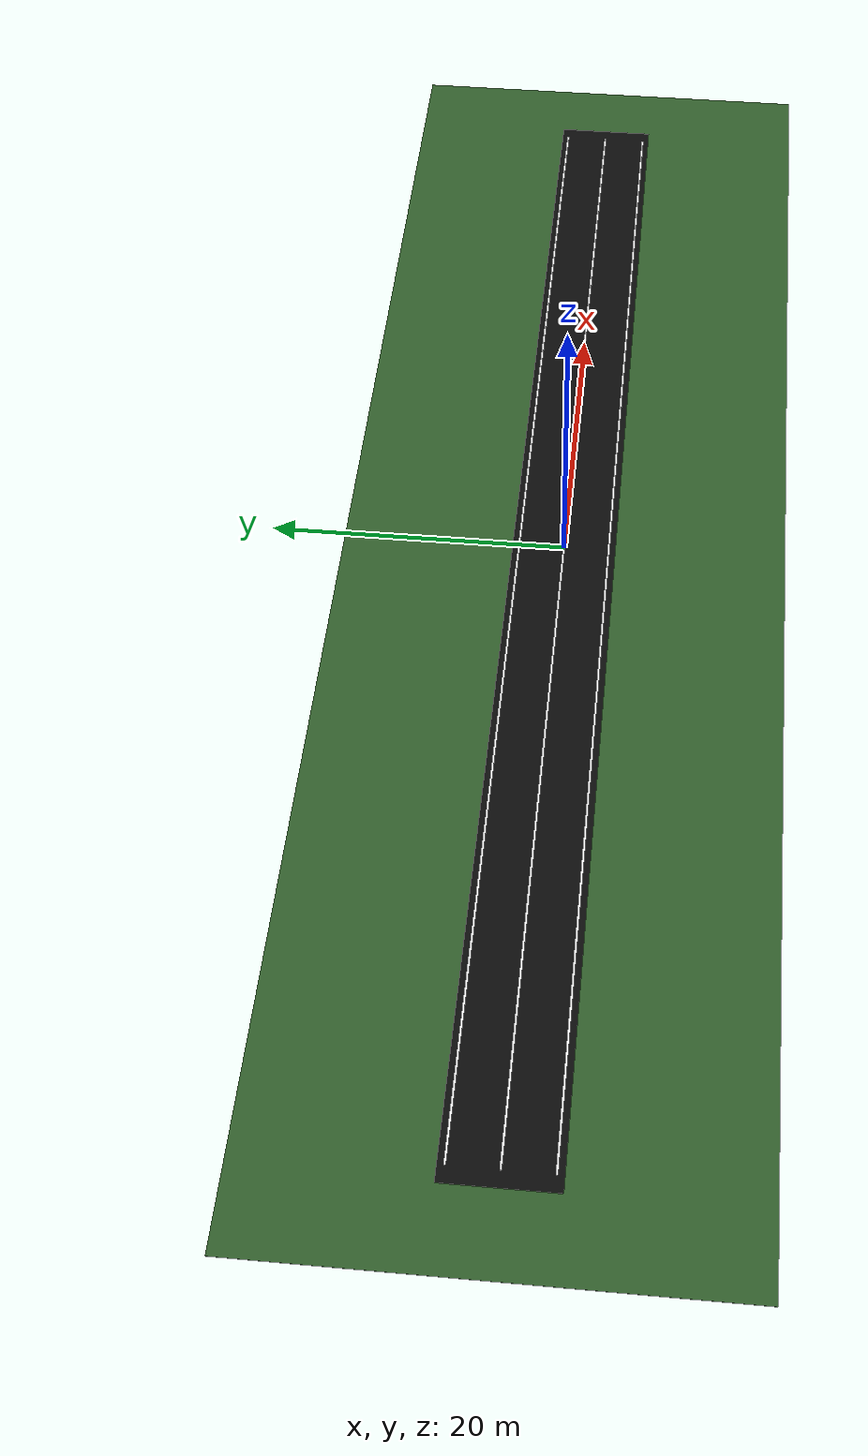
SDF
<?xml version="1.0" ?>
<sdf version="1.6">
  <world name="straight_road_world">
  <!-- Physics of the world -->
    <physics name="default_physics" type="ode">
      <max_step_size>0.001</max_step_size>
      <real_time_update_rate>1000</real_time_update_rate>
      <real_time_factor>1.0</real_time_factor>
    </physics>

    <!-- Scene of the envirnoment-->

    <model name="grass_ground">
      <!-- Static meaning the ground doesn't move at all -->
      <static>true</static>
      <link name="ground_link">
        <collision name="ground_collision">
          <geometry>
            <box>
            <!-- Format: x y z-->
              <size>100 30 0.02</size>
            </box>
          </geometry>
        </collision>
        <visual name="ground_visual">
          <geometry>
            <box>
              <size>100 30 0.02</size>
            </box>
          </geometry>
          <material>
            <ambient>0.18 0.35 0.16 1</ambient>
            <diffuse>0.18 0.35 0.16 1</diffuse>
          </material>
        </visual>
      </link>
      <!-- Format: x y z roll pitch yaw -->
      <pose>0 0 -0.02 0 0 0</pose>
    </model>

    <model name="straight_asphalt_road">
      <!-- Static meaning the ground doesn't move at all -->
      <static>true</static>
      <link name="road_link">
        <collision name="road_collision">
          <geometry>
            <box>
              <!-- Collision Size: x y z -->
              <size>90 7 0.04</size>
            </box>
          </geometry>
        </collision>
        <visual name="road_visual">
          <geometry>
            <box>
              <size>90 7 0.04</size>
            </box>
          </geometry>
          <material>
            <ambient>0.025 0.025 0.025 1</ambient>
            <diffuse>0.035 0.035 0.035 1</diffuse>
            <specular>0.01 0.01 0.01 1</specular>
          </material>
        </visual>
      </link>
      <pose>0 0 0.01 0 0 0</pose>
    </model>

    <model name="white_edge_left">
      <static>true</static>
      <link name="white_edge_left_link">
        <visual name="white_edge_left_visual">
          <pose>0 3.05 0.035 0 0 0</pose>
          <geometry>
            <box>
              <size>88 0.12 0.01</size>
            </box>
          </geometry>
          <material>
            <ambient>1 1 1 1</ambient>
            <diffuse>1 1 1 1</diffuse>
          </material>
        </visual>
      </link>
    </model>
    <model name="white_edge_right">
      <static>true</static>
      <link name="white_edge_right_link">
        <visual name="white_edge_right_visual">
          <pose>0 -3.05 0.035 0 0 0</pose>
          <geometry>
            <box>
              <size>88 0.12 0.01</size>
            </box>
          </geometry>
          <material>
            <ambient>1 1 1 1</ambient>
            <diffuse>1 1 1 1</diffuse>
          </material>
        </visual>
      </link>
    </model>
    <model name="white_edge_middle">
      <static>true</static>
      <link name="white_edge_middle_link">
        <visual name="white_edge_middle_visual">
          <pose>0 0 0.035 0 0 0</pose>
          <geometry>
            <box>
              <size>88 0.12 0.01</size>
            </box>
          </geometry>
          <material>
            <ambient>1 1 1 1</ambient>
            <diffuse>1 1 1 1</diffuse>
          </material>
        </visual>
      </link>
    </model>

  </world>
</sdf>
